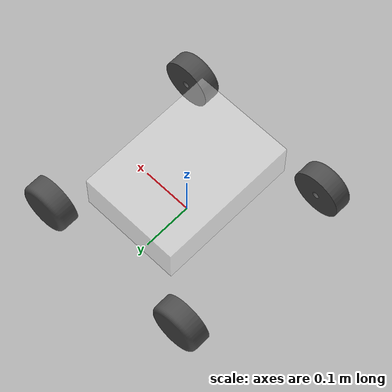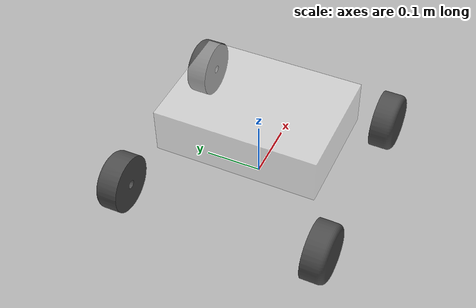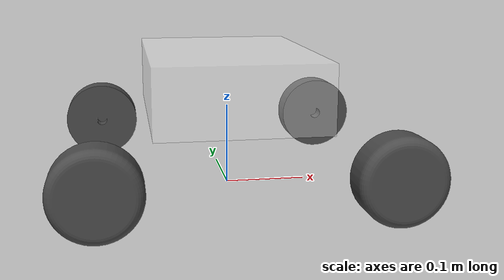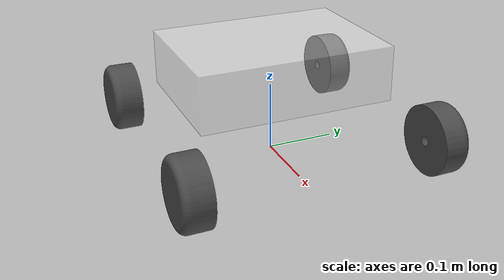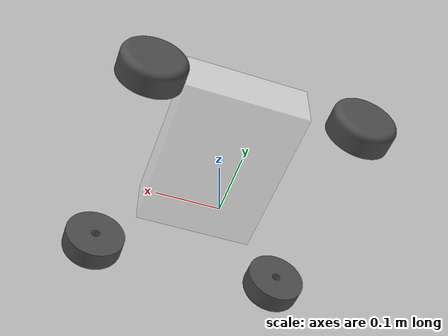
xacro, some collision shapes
<?xml version="1.0"?>
<robot xmlns:xacro="http://www.ros.org/wiki/xacro">

  <!--  Dimensions (metres). base_link sits at wheel-axle height -->
  <xacro:property name="wheel_radius" value="0.05"/>
  <xacro:property name="wheel_width"  value="0.04"/>
  <xacro:property name="wheel_x"      value="0.16"/>  <!-- axle position, front (+) / rear (-) -->
  <xacro:property name="wheel_y"      value="0.16"/>  <!-- joint position, left (+) / right (-) -->
  <xacro:property name="wheel_offset" value="0.02"/>  <!-- wheel centre sits this far outboard of its joint -->

  <!--  base_footprint: robot frame on the floor, directly below -->
  <!--  the chassis (REP-105). EKF, AMCL, SLAM and Nav2 track    -->
  <!--  this frame; base_link sits at wheel-axle height above it -->
  <link name="base_footprint"/>

  <joint name="base_footprint_joint" type="fixed">
    <parent link="base_footprint"/>
    <child link="base_link"/>
    <origin xyz="0 0 ${wheel_radius}" rpy="0 0 0"/>
  </joint>

  <!--  Chassis                                                 -->
  <link name="base_link">
    <inertial>
      <origin xyz="0 0 0.080606" rpy="0 0 0"/>
      <mass value="20"/>
      <inertia ixx="0.5403" ixy="0" ixz="0" iyy="1.158" iyz="0" izz="1.4784"/>
    </inertial>
    <visual>
      <geometry>
        <mesh filename="package://skid_steer_amr/meshes/base_link.STL"/>
      </geometry>
      <material name="chassis_white">
        <color rgba="1 1 1 0.35"/>
      </material>
    </visual>
    <!-- NOTE: simplified box, smaller than the 0.50 x 0.40 m visual chassis.
         See README "Known limitations". -->
    <collision>
      <origin xyz="0 0 0.08" rpy="0 0 0"/>
      <geometry>
        <box size="0.20 0.28 0.08"/>
      </geometry>
    </collision>
  </link>

  <!--  Wheel macro                                             -->
  <!--    name: flw / frw / rlw / rrw  (front/rear, left/right) -->
  <!--    x:    +1 front, -1 rear                               -->
  <!--    side: +1 left,  -1 right                              -->
  <xacro:macro name="wheel" params="name x side">
    <link name="${name}_link">
      <inertial>
        <origin xyz="0 ${side * 0.019741} 0" rpy="0 0 0"/>
        <mass value="0.37917"/>
        <inertia ixx="0.00028454" ixy="0" ixz="0" iyy="0.00047097" iyz="0" izz="0.00028454"/>
      </inertial>
      <visual>
        <geometry>
          <mesh filename="package://skid_steer_amr/meshes/${name}_link.STL"/>
        </geometry>
        <material name="wheel_grey">
          <color rgba="0.29804 0.29804 0.29804 1"/>
        </material>
      </visual>
      <collision>
        <!-- cylinder axis is Z by default; rotate it onto the axle (Y) -->
        <origin xyz="0 ${side * wheel_offset} 0" rpy="${pi/2} 0 0"/>
        <geometry>
          <cylinder radius="${wheel_radius}" length="${wheel_width}"/>
        </geometry>
      </collision>
    </link>

    <joint name="${name}_joint" type="continuous">
      <parent link="base_link"/>
      <child link="${name}_link"/>
      <origin xyz="${x * wheel_x} ${side * wheel_y} 0" rpy="0 0 0"/>
      <axis xyz="0 1 0"/>
      <limit effort="100" velocity="20"/>
    </joint>

    <gazebo reference="${name}_link">
      <material>Gazebo/FlatBlack</material>   <!-- Gazebo ignores URDF colours -->
      <mu1>0.3</mu1>
      <mu2>1.0</mu2>
      <fdir1>0 0 1</fdir1>
      <kp>500000</kp>
      <kd>50</kd>
    </gazebo>
  </xacro:macro>

  <xacro:wheel name="flw" x="1"  side="1"/>
  <xacro:wheel name="frw" x="1"  side="-1"/>
  <xacro:wheel name="rlw" x="-1" side="1"/>
  <xacro:wheel name="rrw" x="-1" side="-1"/>

</robot>
